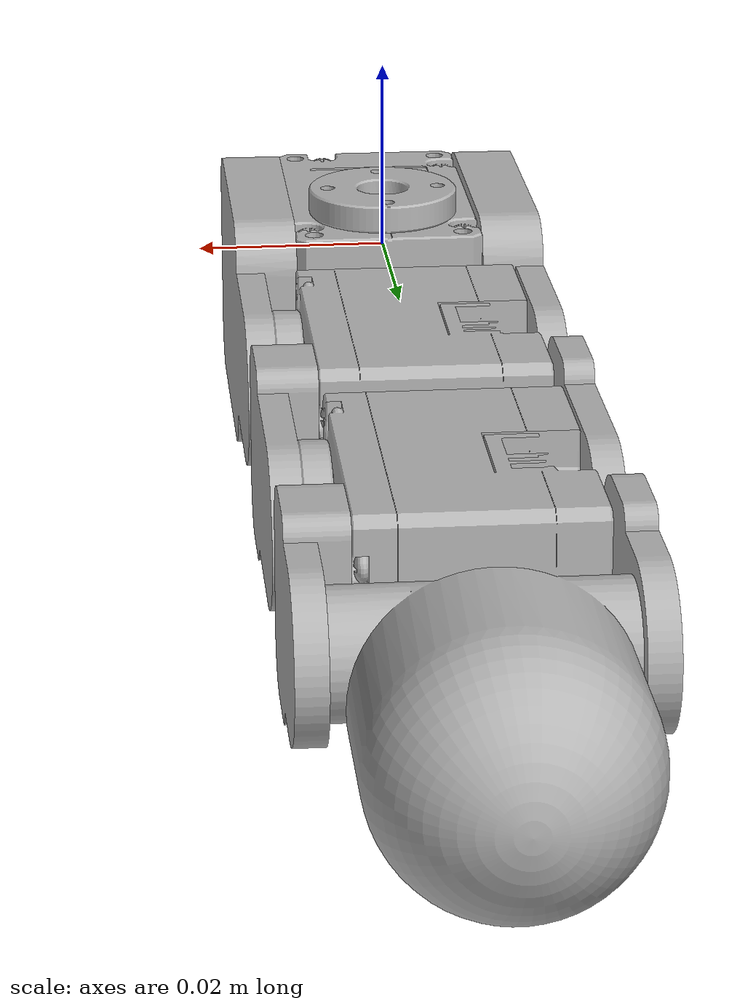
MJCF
<mujoco model="URDF_finger_ssss">
    <compiler angle="radian" meshdir="/home/kunpeng/Workspace/crawling_hand/descriptions/single_finger/shortest/meshes/" />
    <size njmax="500" nconmax="100" />

    <option>
        <flag gravity="disable"/>
    </option>

    <asset>
        <mesh name="base_link" file="base_link.stl" scale="0.001 0.001 0.001" />
        <mesh name="MCP_spread_motor_1" file="MCP_spread_motor_1.stl" scale="0.001 0.001 0.001" />
        <mesh name="MCP_motor_1" file="MCP_motor_1.stl" scale="0.001 0.001 0.001" />
        <mesh name="proximal_1" file="proximal_1.stl" scale="0.001 0.001 0.001" />
        <mesh name="PIP_DIP_motor_1" file="PIP_DIP_motor_1.stl" scale="0.001 0.001 0.001" />
        <mesh name="middle_1" file="middle_1.stl" scale="0.001 0.001 0.001" />
        <mesh name="distal_1" file="distal_1.stl" scale="0.001 0.001 0.001" />
        <mesh name="metacarpal_1" file="metacarpal_1.stl" scale="0.001 0.001 0.001" />
    </asset>
    <worldbody>
        <geom type="mesh" rgba="0.7 0.7 0.7 1" mesh="base_link" />
        <body name="MCP_spread_motor_1" pos="0 0 0.0036">
            <inertial pos="0.000245265 -0.00496883 -0.0114693" quat="0.524663 0.474196 -0.523113 0.475625" mass="0.21816" diaginertia="5.65844e-05 4.36866e-05 3.19042e-05" />
            <joint name="MCP_spread" pos="0 0 0" axis="0 0 -1" />
            <geom pos="0 0 -0.0036" type="mesh" rgba="0.7 0.7 0.7 1" mesh="MCP_spread_motor_1" />
            <geom pos="0 0 -0.0036" type="mesh" rgba="0.7 0.7 0.7 1" mesh="metacarpal_1" />
            <body name="MCP_motor_1" pos="0.0106 0.0235 -0.0116">
                <inertial pos="-0.0103512 0.0125458 3.30732e-06" quat="0.535591 0.461692 -0.535523 0.461734" mass="0.151474" diaginertia="3.89252e-05 3.18099e-05 1.61153e-05" />
                <joint name="MCP" pos="0 0 0" axis="-1 0 0" />
                <geom pos="-0.0106 -0.0235 0.008" type="mesh" rgba="0.7 0.7 0.7 1" mesh="MCP_motor_1" />
                <geom pos="-0.0106 -0.0235 0.008" type="mesh" rgba="0.7 0.7 0.7 1" mesh="proximal_1" />
                <body name="PIP_DIP_motor_1" pos="0 0.039 0">
                    <inertial pos="-0.010709 0.0103943 3.56469e-06" quat="0.533676 0.463904 -0.533611 0.463942" mass="0.140537" diaginertia="2.81223e-05 2.20307e-05 1.40916e-05" />
                    <joint name="PIP" pos="0 0 0" axis="-1 0 0" />
                    <geom pos="-0.0106 -0.0625 0.008" type="mesh" rgba="0.7 0.7 0.7 1" mesh="PIP_DIP_motor_1" />
                    <geom pos="-0.0106 -0.0625 0.008" type="mesh" rgba="0.7 0.7 0.7 1" mesh="middle_1" />
                    <body name="distal_1" pos="0.0029 0.0305 0">
                        <inertial pos="-0.0135 0.0167496 0" quat="0.5 0.5 -0.5 0.5" mass="0.112487" diaginertia="1.8e-05 1.7e-05 8e-06" />
                        <joint name="DIP" pos="0 0 0" axis="1 0 0" />
                        <geom pos="-0.0135 -0.093 0.008" type="mesh" rgba="0.7 0.7 0.7 1" mesh="distal_1" />
                    </body>
                </body>
            </body>
        </body>
    </worldbody>

    <equality>
        <joint joint1="PIP" joint2="DIP" polycoef="0 -1 0 0 0"/>
    </equality>

    <actuator>
        <position name="joint_01" ctrllimited="true" ctrlrange="-1.0 1.0" joint="MCP_spread" />
        <position name="joint_02" ctrllimited="true" ctrlrange="-1.0 1.0" joint="MCP" />
        <position name="joint_03" ctrllimited="true" ctrlrange="-1.0 1.0" joint="PIP" />
  </actuator>

</mujoco>
